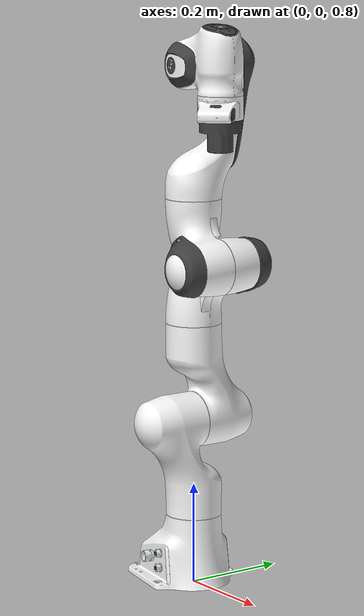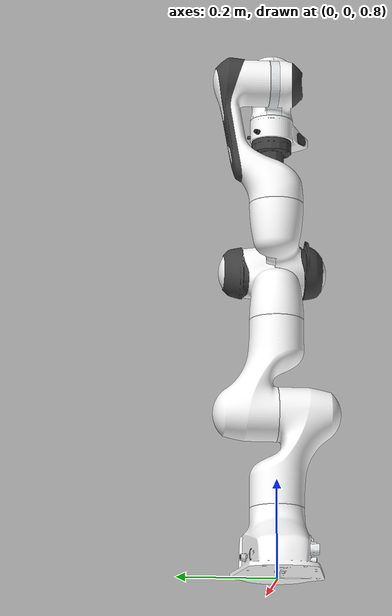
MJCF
<mujoco model="panda">
  <compiler angle="radian" autolimits="true"/>

  <default>
    <default class="panda">
      <joint armature="0.1" damping="1" axis="0 0 1" range="-2.8973 2.8973"/>
      <default class="panda/visual">
        <geom type="mesh" contype="0" conaffinity="0" group="2"/>
      </default>
      <default class="panda/collision">
        <geom type="mesh" group="3"/>
      </default>
      <site size="0.001" rgba="0.5 0.5 0.5 0.3" group="4"/>
    </default>
    <default class="2f85">
      <mesh scale="0.001 0.001 0.001"/>
      <general biastype="affine"/>
      <site type="sphere" rgba="0.9 0.9 0.9 1" size="0.005" group="4"/>
      <joint axis="1 0 0"/>
      <default class="driver">
        <joint range="0 0.8" armature="0.005" damping="0.1" solimplimit="0.95 0.99 0.001" solreflimit="0.005 1"/>
      </default>
      <default class="follower">
        <joint range="-0.872664 0.872664" pos="0 -0.018 0.0065" solimplimit="0.95 0.99 0.001" solreflimit="0.005 1"/>
      </default>
      <default class="spring_link">
        <joint range="-0.29670597283 0.8" stiffness="0.05" springref="2.62" damping="0.00125"/>
      </default>
      <default class="coupler">
        <joint range="-1.57 0" solimplimit="0.95 0.99 0.001" solreflimit="0.005 1"/>
      </default>
      <default class="2f85/visual">
        <geom type="mesh" contype="0" conaffinity="0" group="2"/>
      </default>
      <default class="2f85/collision">
        <geom type="mesh" group="3"/>
        <default class="pad_box1">
          <geom mass="0" type="box" pos="0 -0.0026 0.028125" size="0.011 0.004 0.009375" friction="0.7"
            solimp="0.95 0.99 0.001" solref="0.004 1" priority="1" rgba="0.55 0.55 0.55 1"/>
        </default>
        <default class="pad_box2">
          <geom mass="0" type="box" pos="0 -0.0026 0.009375" size="0.011 0.004 0.009375" friction="0.6"
            solimp="0.95 0.99 0.001" solref="0.004 1" priority="1" rgba="0.45 0.45 0.45 1"/>
        </default>
      </default>
    </default>
  </default>

  <asset>
    <material name="white" rgba="1 1 1 1"/>
    <material name="off_white" rgba="0.901961 0.921569 0.929412 1"/>
    <material name="dark_grey" rgba="0.25 0.25 0.25 1"/>
    <material name="green" rgba="0 1 0 1"/>
    <material name="light_blue" rgba="0.039216 0.541176 0.780392 1"/>
    <material name="metal" rgba="0.58 0.58 0.58 1"/>
    <material name="silicone" rgba="0.1882 0.1882 0.1882 1"/>
    <material name="gray" rgba="0.4627 0.4627 0.4627 1"/>
    <material name="black" rgba="0.149 0.149 0.149 1"/>

    <mesh name="link0_c" file="franka_emika_panda/assets/link0.stl"/>
    <mesh name="link1_c" file="franka_emika_panda/assets/link1.stl"/>
    <mesh name="link2_c" file="franka_emika_panda/assets/link2.stl"/>
    <mesh name="link3_c" file="franka_emika_panda/assets/link3.stl"/>
    <mesh name="link4_c" file="franka_emika_panda/assets/link4.stl"/>
    <mesh name="link5_c0" file="franka_emika_panda/assets/link5_collision_0.obj"/>
    <mesh name="link5_c1" file="franka_emika_panda/assets/link5_collision_1.obj"/>
    <mesh name="link5_c2" file="franka_emika_panda/assets/link5_collision_2.obj"/>
    <mesh name="link6_c" file="franka_emika_panda/assets/link6.stl"/>
    <mesh name="link7_c" file="franka_emika_panda/assets/link7.stl"/>
    <mesh file="franka_emika_panda/assets/link0_0.obj"/>
    <mesh file="franka_emika_panda/assets/link0_1.obj"/>
    <mesh file="franka_emika_panda/assets/link0_2.obj"/>
    <mesh file="franka_emika_panda/assets/link0_3.obj"/>
    <mesh file="franka_emika_panda/assets/link0_4.obj"/>
    <mesh file="franka_emika_panda/assets/link0_5.obj"/>
    <mesh file="franka_emika_panda/assets/link0_7.obj"/>
    <mesh file="franka_emika_panda/assets/link0_8.obj"/>
    <mesh file="franka_emika_panda/assets/link0_9.obj"/>
    <mesh file="franka_emika_panda/assets/link0_10.obj"/>
    <mesh file="franka_emika_panda/assets/link0_11.obj"/>
    <mesh file="franka_emika_panda/assets/link1.obj"/>
    <mesh file="franka_emika_panda/assets/link2.obj"/>
    <mesh file="franka_emika_panda/assets/link3_0.obj"/>
    <mesh file="franka_emika_panda/assets/link3_1.obj"/>
    <mesh file="franka_emika_panda/assets/link3_2.obj"/>
    <mesh file="franka_emika_panda/assets/link3_3.obj"/>
    <mesh file="franka_emika_panda/assets/link4_0.obj"/>
    <mesh file="franka_emika_panda/assets/link4_1.obj"/>
    <mesh file="franka_emika_panda/assets/link4_2.obj"/>
    <mesh file="franka_emika_panda/assets/link4_3.obj"/>
    <mesh file="franka_emika_panda/assets/link5_0.obj"/>
    <mesh file="franka_emika_panda/assets/link5_1.obj"/>
    <mesh file="franka_emika_panda/assets/link5_2.obj"/>
    <mesh file="franka_emika_panda/assets/link6_0.obj"/>
    <mesh file="franka_emika_panda/assets/link6_1.obj"/>
    <mesh file="franka_emika_panda/assets/link6_2.obj"/>
    <mesh file="franka_emika_panda/assets/link6_3.obj"/>
    <mesh file="franka_emika_panda/assets/link6_4.obj"/>
    <mesh file="franka_emika_panda/assets/link6_5.obj"/>
    <mesh file="franka_emika_panda/assets/link6_6.obj"/>
    <mesh file="franka_emika_panda/assets/link6_7.obj"/>
    <mesh file="franka_emika_panda/assets/link6_8.obj"/>
    <mesh file="franka_emika_panda/assets/link6_9.obj"/>
    <mesh file="franka_emika_panda/assets/link6_10.obj"/>
    <mesh file="franka_emika_panda/assets/link6_11.obj"/>
    <mesh file="franka_emika_panda/assets/link6_12.obj"/>
    <mesh file="franka_emika_panda/assets/link6_13.obj"/>
    <mesh file="franka_emika_panda/assets/link6_14.obj"/>
    <mesh file="franka_emika_panda/assets/link6_15.obj"/>
    <mesh file="franka_emika_panda/assets/link6_16.obj"/>
    <mesh file="franka_emika_panda/assets/link7_0.obj"/>
    <mesh file="franka_emika_panda/assets/link7_1.obj"/>
    <mesh file="franka_emika_panda/assets/link7_2.obj"/>
    <mesh file="franka_emika_panda/assets/link7_3.obj"/>
    <mesh file="franka_emika_panda/assets/link7_4.obj"/>
    <mesh file="franka_emika_panda/assets/link7_5.obj"/>
    <mesh file="franka_emika_panda/assets/link7_6.obj"/>
    <mesh file="franka_emika_panda/assets/link7_7.obj"/>
    <mesh name="wipe_eef" file="meshes/panda_wipe/wipe_eef.stl" scale="0.001 0.001 0.001" />
  </asset>

  <worldbody>
    <body name="link0" childclass="panda" pos="0 0 0.8">
      <inertial mass="0.629769" pos="-0.041018 -0.00014 0.049974"
        fullinertia="0.00315 0.00388 0.004285 8.2904e-7 0.00015 8.2299e-6"/>
      <geom mesh="link0_0" material="off_white" class="panda/visual"/>
      <geom mesh="link0_1" material="dark_grey" class="panda/visual"/>
      <geom mesh="link0_2" material="off_white" class="panda/visual"/>
      <geom mesh="link0_3" material="dark_grey" class="panda/visual"/>
      <geom mesh="link0_4" material="off_white" class="panda/visual"/>
      <geom mesh="link0_5" material="dark_grey" class="panda/visual"/>
      <geom mesh="link0_7" material="white" class="panda/visual"/>
      <geom mesh="link0_8" material="white" class="panda/visual"/>
      <geom mesh="link0_9" material="dark_grey" class="panda/visual"/>
      <geom mesh="link0_10" material="off_white" class="panda/visual"/>
      <geom mesh="link0_11" material="white" class="panda/visual"/>
      <geom mesh="link0_c" class="panda/collision"/>
      <body name="link1" pos="0 0 0.333">
        <inertial mass="4.970684" pos="0.003875 0.002081 -0.04762"
          fullinertia="0.70337 0.70661 0.0091170 -0.00013900 0.0067720 0.019169"/>
        <joint name="joint1"/>
        <site name="joint1"/>
        <geom material="white" mesh="link1" class="panda/visual"/>
        <geom mesh="link1_c" class="panda/collision"/>
        <body name="link2" quat="1 -1 0 0">
          <inertial mass="0.646926" pos="-0.003141 -0.02872 0.003495"
            fullinertia="0.0079620 2.8110e-2 2.5995e-2 -3.925e-3 1.0254e-2 7.04e-4"/>
          <joint name="joint2" range="-1.7628 1.7628"/>
          <site name="joint2"/>
          <geom material="white" mesh="link2" class="panda/visual"/>
          <geom mesh="link2_c" class="panda/collision"/>
          <body name="link3" pos="0 -0.316 0" quat="1 1 0 0">
            <inertial mass="3.228604" pos="2.7518e-2 3.9252e-2 -6.6502e-2"
              fullinertia="3.7242e-2 3.6155e-2 1.083e-2 -4.761e-3 -1.1396e-2 -1.2805e-2"/>
            <joint name="joint3"/>
            <site name="joint3"/>
            <geom mesh="link3_0" material="white" class="panda/visual"/>
            <geom mesh="link3_1" material="white" class="panda/visual"/>
            <geom mesh="link3_2" material="white" class="panda/visual"/>
            <geom mesh="link3_3" material="dark_grey" class="panda/visual"/>
            <geom mesh="link3_c" class="panda/collision"/>
            <body name="link4" pos="0.0825 0 0" quat="1 1 0 0">
              <inertial mass="3.587895" pos="-5.317e-2 1.04419e-1 2.7454e-2"
                fullinertia="2.5853e-2 1.9552e-2 2.8323e-2 7.796e-3 -1.332e-3 8.641e-3"/>
              <joint name="joint4" range="-3.0718 -0.0698"/>
              <site name="joint4"/>
              <geom mesh="link4_0" material="white" class="panda/visual"/>
              <geom mesh="link4_1" material="white" class="panda/visual"/>
              <geom mesh="link4_2" material="dark_grey" class="panda/visual"/>
              <geom mesh="link4_3" material="white" class="panda/visual"/>
              <geom mesh="link4_c" class="panda/collision"/>
              <body name="link5" pos="-0.0825 0.384 0" quat="1 -1 0 0">
                <inertial mass="1.225946" pos="-1.1953e-2 4.1065e-2 -3.8437e-2"
                  fullinertia="3.5549e-2 2.9474e-2 8.627e-3 -2.117e-3 -4.037e-3 2.29e-4"/>
                <joint name="joint5"/>
                <site name="joint5"/>
                <geom mesh="link5_0" material="dark_grey" class="panda/visual"/>
                <geom mesh="link5_1" material="white" class="panda/visual"/>
                <geom mesh="link5_2" material="white" class="panda/visual"/>
                <geom mesh="link5_c0" class="panda/collision"/>
                <geom mesh="link5_c1" class="panda/collision"/>
                <geom mesh="link5_c2" class="panda/collision"/>
                <body name="link6" quat="1 1 0 0">
                  <inertial mass="1.666555" pos="6.0149e-2 -1.4117e-2 -1.0517e-2"
                    fullinertia="1.964e-3 4.354e-3 5.433e-3 1.09e-4 -1.158e-3 3.41e-4"/>
                  <joint name="joint6" range="-0.0175 3.7525"/>
                  <site name="joint6"/>
                  <geom mesh="link6_0" material="off_white" class="panda/visual"/>
                  <geom mesh="link6_1" material="white" class="panda/visual"/>
                  <geom mesh="link6_2" material="dark_grey" class="panda/visual"/>
                  <geom mesh="link6_3" material="white" class="panda/visual"/>
                  <geom mesh="link6_4" material="white" class="panda/visual"/>
                  <geom mesh="link6_5" material="white" class="panda/visual"/>
                  <geom mesh="link6_6" material="white" class="panda/visual"/>
                  <geom mesh="link6_7" material="light_blue" class="panda/visual"/>
                  <geom mesh="link6_8" material="light_blue" class="panda/visual"/>
                  <geom mesh="link6_9" material="dark_grey" class="panda/visual"/>
                  <geom mesh="link6_10" material="dark_grey" class="panda/visual"/>
                  <geom mesh="link6_11" material="white" class="panda/visual"/>
                  <geom mesh="link6_12" material="green" class="panda/visual"/>
                  <geom mesh="link6_13" material="white" class="panda/visual"/>
                  <geom mesh="link6_14" material="dark_grey" class="panda/visual"/>
                  <geom mesh="link6_15" material="dark_grey" class="panda/visual"/>
                  <geom mesh="link6_16" material="white" class="panda/visual"/>
                  <geom mesh="link6_c" class="panda/collision"/>
                  <body name="link7" pos="0.088 0 0" quat="1 1 0 0">
                    <inertial mass="7.35522e-01" pos="1.0517e-2 -4.252e-3 6.1597e-2" fullinertia="1.2516e-2 1.0027e-2 4.815e-3 -4.28e-4 -1.196e-3 -7.41e-4"/>
                    <joint name="joint7"/>
                    <site name="joint7"/>
                    <geom mesh="link7_0" material="white" class="panda/visual"/>
                    <geom mesh="link7_1" material="dark_grey" class="panda/visual"/>
                    <geom mesh="link7_2" material="dark_grey" class="panda/visual"/>
                    <geom mesh="link7_3" material="dark_grey" class="panda/visual"/>
                    <geom mesh="link7_4" material="dark_grey" class="panda/visual"/>
                    <geom mesh="link7_5" material="dark_grey" class="panda/visual"/>
                    <geom mesh="link7_6" material="dark_grey" class="panda/visual"/>
                    <geom mesh="link7_7" material="white" class="panda/visual"/>
                    <geom mesh="link7_c" class="panda/collision"/>
                    <body name="wiping_gripper" pos="0 0 0.107" quat="1 0 0 0">
                      <site name="ft_frame" pos="0 0 0" size="0.0001" rgba="1 1 0 0" type="sphere" group="1"/>
                      <inertial pos="0.00 0.001 -0.018" mass="0.709" diaginertia="55e-8 54e-8 53e-8"/>
                      <geom type="mesh" pos="0 0 0.0" name="wiping_surface_vis" mesh="wipe_eef" contype="1" group="1" rgba="0.25 0.25 0.25 0.9"/>
                      <!-- Necessary for the contact between robotic arm and object -->
                      <body name="dummy_body" pos="0 0 0.0536" quat="1 0 0 0">
                        <inertial pos="0 0 0" mass="0.0000001" diaginertia="0 0 0" />
                        <!-- This geom is the actual body that the object will get in contact with -->
                        <geom type="cylinder" pos="0 0 -0.0004" size="0.026 0.001" rgba="0 1 0 0" solimp="0.9 0.99 0.005" solref="0.02 1.0" priority="1" condim="1" friction="0.005 0.0001 0.002" group="1"/>
                        <!-- We take this site to append the f/t sensor to -->
                        <site name="grip_site" pos="0 0 -0.0005" size="0.001 0.001 0.001" rgba="1 0 0 0" type="sphere" group="1"/>

                        <!-- These sites were added for visualizations of the end-effector orientation (necessary for debugging) -->
                        <site name="ee_x" pos="0 0 0" size="0.005 .1"  quat="0.707105  0 0.707108 0 " rgba="1 0 0 0" type="cylinder" group="1"/>
                        <site name="ee_y" pos="0 0 0" size="0.005 .1" quat="0.707105 0.707108 0 0" rgba="0 1 0 0" type="cylinder" group="1"/>
                        <site name="ee_z" pos="0 0 0" size="0.005 .1" quat="1 0 0 0" rgba="0 0 1 0" type="cylinder" group="1"/>
                        <site name="grip_site_cylinder" pos="0 0 0" size="0.005 10" rgba="0 1 0 0" type="cylinder" group="1"/>
                      </body>
                    </body>
                  </body>
                </body>
              </body>
            </body>
          </body>
        </body>
      </body>
    </body>
  </worldbody>

  <!-- ACTUATORS -->
  <actuator>
    <motor class="panda" name="actuator1" joint="joint1" ctrlrange="-87 87"/>
    <motor class="panda" name="actuator2" joint="joint2" ctrlrange="-87 87"/>
    <motor class="panda" name="actuator3" joint="joint3" ctrlrange="-87 87"/>
    <motor class="panda" name="actuator4" joint="joint4" ctrlrange="-87 87"/>
    <motor class="panda" name="actuator5" joint="joint5" ctrlrange="-12 12"/>
    <motor class="panda" name="actuator6" joint="joint6" ctrlrange="-12 12"/>
    <motor class="panda" name="actuator7" joint="joint7" ctrlrange="-12 12"/>
  </actuator>

  <!-- SENSORS -->
  <sensor>
    <jointpos name="joint1_pos" joint="joint1"/>
    <jointpos name="joint2_pos" joint="joint2"/>
    <jointpos name="joint3_pos" joint="joint3"/>
    <jointpos name="joint4_pos" joint="joint4"/>
    <jointpos name="joint5_pos" joint="joint5"/>
    <jointpos name="joint6_pos" joint="joint6"/>
    <jointpos name="joint7_pos" joint="joint7"/>

    <jointvel name="joint1_vel" joint="joint1"/>
    <jointvel name="joint2_vel" joint="joint2"/>
    <jointvel name="joint3_vel" joint="joint3"/>
    <jointvel name="joint4_vel" joint="joint4"/>
    <jointvel name="joint5_vel" joint="joint5"/>
    <jointvel name="joint6_vel" joint="joint6"/>
    <jointvel name="joint7_vel" joint="joint7"/>

    <torque name="joint1_torque" site="joint1"/>
    <torque name="joint2_torque" site="joint2"/>
    <torque name="joint3_torque" site="joint3"/>
    <torque name="joint4_torque" site="joint4"/>
    <torque name="joint5_torque" site="joint5"/>
    <torque name="joint6_torque" site="joint6"/>
    <torque name="joint7_torque" site="joint7"/>

    <force name="eef_force" site="grip_site"/>
    <torque name="eef_torque" site="grip_site"/>
    <gyro name="eef_vel_rot" site="grip_site"/>
    <velocimeter name="eef_vel" site="grip_site"/>

    <framepos name="eef_pos" objtype="site" objname="grip_site"/>
    <framequat name="eef_quat" objtype="site" objname="grip_site"/>

  </sensor>
</mujoco>
